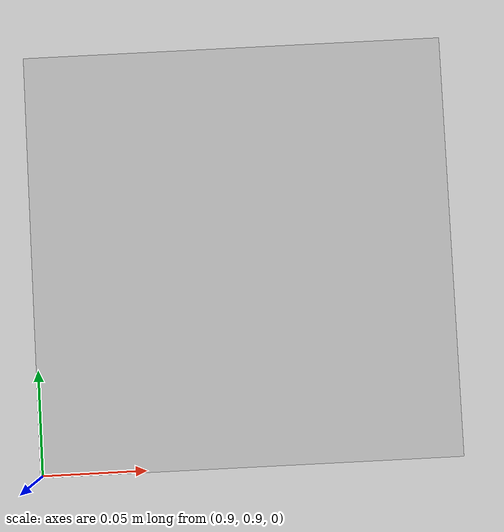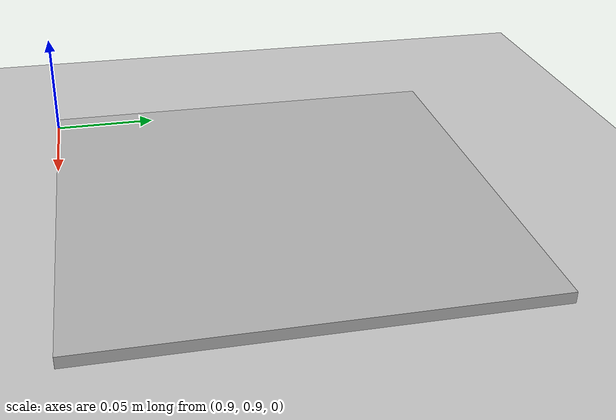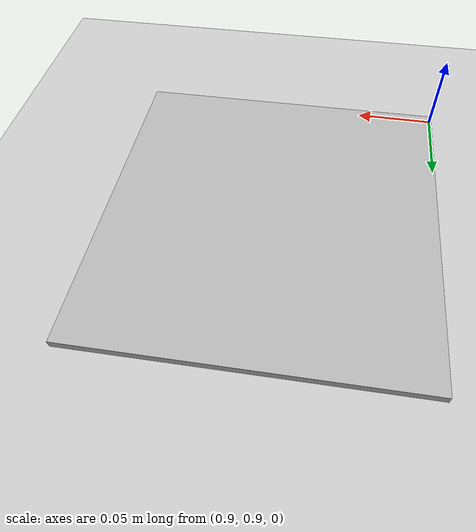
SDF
<?xml version="1.0" ?>
<sdf version='1.4'>
  <world name='default'>

    <physics type='ode'>
      <max_step_size>0.0002</max_step_size>
      <real_time_factor>1</real_time_factor>
      <real_time_update_rate>5000</real_time_update_rate>
      <gravity>0 0 -9.81</gravity>
      <ode>
        <solver>
          <type>quick</type>
          <iters>50</iters>
          <sor>1.3</sor>
        </solver>
        <constraints>
          <cfm>0.0</cfm>
          <erp>0.2</erp>
          <contact_max_correcting_vel>10.0</contact_max_correcting_vel>
          <contact_surface_layer>0.001</contact_surface_layer>
        </constraints>
      </ode>
    </physics>

    <!-- A global light source -->
   <scene>
      <sky>
        <clouds>
          <speed>12</speed>
        </clouds>
      </sky>
   </scene>

    <include>
      <uri>model://sun</uri>
    </include>

    <include>
      <uri>model://ground_plane</uri>
    </include>

    <model name="april_tag0" >
      <pose>1.0 1.0 0.0 0 0 1.570796</pose>
      <include>
        <uri>model://Apriltag36_11_00000_small//</uri>
      </include>
    </model>
  </world>
</sdf>

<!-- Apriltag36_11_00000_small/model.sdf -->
<sdf version='1.6'>
  <model name='Apriltag36_11_00000_small'>
    <link name='main'>
    <pose frame=''>0 0 0 0 0 0</pose>
      <visual name='main_Visual'>
        <geometry>
          <box>
          <size> 0.2 0.2 0.01</size>
          </box>
        </geometry>
           <material>
          <script>
            <uri>model://Apriltag36_11_00000/materials/scripts</uri>
            <uri>model://Apriltag36_11_00000/materials/textures</uri>
            <name>Apriltag36_11_00000</name>
          </script>
        </material>
      </visual>
     </link>
    <static>1</static>
  </model>
</sdf>
